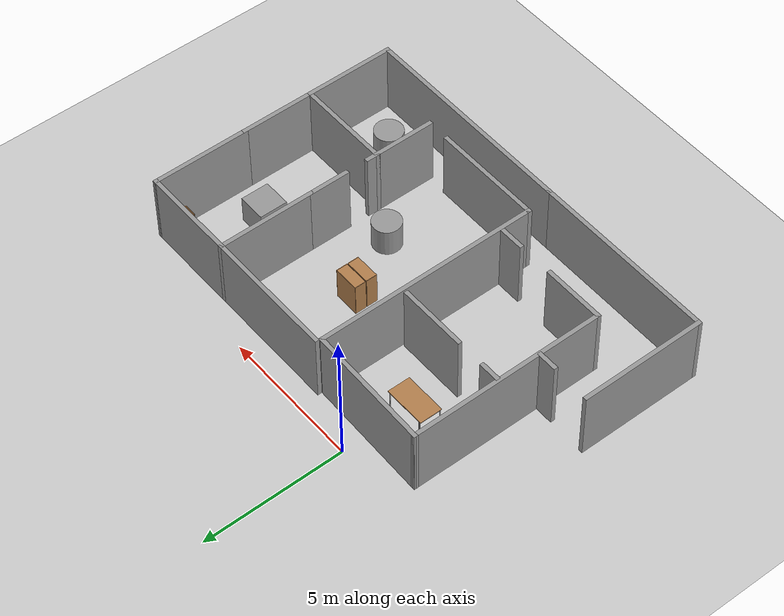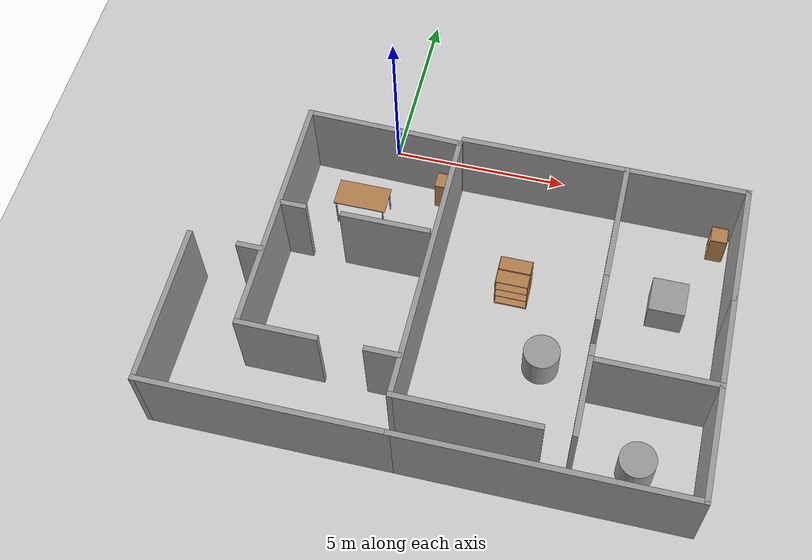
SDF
<sdf version="1.7">
 <world name="default">
  <light name="sun" type="directional">
   <pose>0 0 10 0 -0 0</pose>
   <diffuse>0.8 0.8 0.8 1</diffuse>
   <specular>0.2 0.2 0.2 1</specular>
   <attenuation>
    <range>1000</range>
    <constant>0.9</constant>
    <linear>0.01</linear>
    <quadratic>0.001</quadratic>
   </attenuation>
   <direction>-0.5 0.1 -0.9</direction>
   <spot><inner_angle>0</inner_angle><outer_angle>0</outer_angle><falloff>0</falloff></spot>
  </light>
  <model name="ground_plane">
   <static>1</static>
   <link name="link">
    <collision name="collision">
     <geometry><plane><normal>0 0 1</normal><size>100 100</size></plane></geometry>
     <surface>
      <contact><collide_bitmask>65535</collide_bitmask></contact>
      <friction><ode><mu>100</mu><mu2>50</mu2></ode></friction>
     </surface>
    </collision>
    <visual name="visual">
     <cast_shadows>0</cast_shadows>
     <geometry><plane><normal>0 0 1</normal><size>100 100</size></plane></geometry>
     <material>
      <script><uri>file://media/materials/scripts/gazebo.material</uri><name>Gazebo/Grey</name></script>
     </material>
    </visual>
   </link>
  </model>
  <gravity>0 0 -9.8</gravity>
  <magnetic_field>6e-06 2.3e-05 -4.2e-05</magnetic_field>
  <atmosphere type="adiabatic"/>
  <physics type="ode">
   <max_step_size>0.001</max_step_size>
   <real_time_factor>1</real_time_factor>
   <real_time_update_rate>1000</real_time_update_rate>
  </physics>
  <scene><ambient>0.4 0.4 0.4 1</ambient><background>0.7 0.7 0.7 1</background><shadows>1</shadows></scene>
  <spherical_coordinates>
   <surface_model>EARTH_WGS84</surface_model>
   <latitude_deg>0</latitude_deg>
   <longitude_deg>0</longitude_deg>
   <elevation>0</elevation>
   <heading_deg>0</heading_deg>
  </spherical_coordinates>
  <model name="smart_lab">
   <pose>2.895 -4.9325 0 0 -0 0</pose>
   <link name="Wall_10">
    <collision name="Wall_10_Collision">
     <geometry><box><size>3.5 0.15 2.5</size></box></geometry>
     <pose>0 0 1.25 0 -0 0</pose>
    </collision>
    <visual name="Wall_10_Visual">
     <pose>0 0 1.25 0 -0 0</pose>
     <geometry><box><size>3.5 0.15 2.5</size></box></geometry>
     <material>
      <script><uri>file://media/materials/scripts/gazebo.material</uri><name>Gazebo/Grey</name></script>
      <ambient>1 1 1 1</ambient>
     </material>
     <meta><layer>0</layer></meta>
    </visual>
    <pose>5.55 -1.7575 0 0 -0 3.14159</pose>
   </link>
   <link name="Wall_11">
    <collision name="Wall_11_Collision">
     <geometry><box><size>2.25 0.15 2.5</size></box></geometry>
     <pose>0 0 1.25 0 -0 0</pose>
    </collision>
    <visual name="Wall_11_Visual">
     <pose>0 0 1.25 0 -0 0</pose>
     <geometry><box><size>2.25 0.15 2.5</size></box></geometry>
     <material>
      <script><uri>file://media/materials/scripts/gazebo.material</uri><name>Gazebo/Grey</name></script>
      <ambient>1 1 1 1</ambient>
     </material>
     <meta><layer>0</layer></meta>
    </visual>
    <pose>3.875 -2.8075 0 0 -0 -1.5708</pose>
   </link>
   <link name="Wall_13">
    <collision name="Wall_13_Collision">
     <geometry><box><size>8 0.15 2.5</size></box></geometry>
     <pose>0 0 1.25 0 -0 0</pose>
    </collision>
    <visual name="Wall_13_Visual">
     <pose>0 0 1.25 0 -0 0</pose>
     <geometry><box><size>8 0.15 2.5</size></box></geometry>
     <material>
      <script><uri>file://media/materials/scripts/gazebo.material</uri><name>Gazebo/Grey</name></script>
      <ambient>1 1 1 1</ambient>
     </material>
     <meta><layer>0</layer></meta>
    </visual>
    <pose>3.3 -4.8575 0 0 -0 3.14159</pose>
   </link>
   <link name="Wall_21">
    <collision name="Wall_21_Collision">
     <geometry><box><size>0.5 0.15 2.5</size></box></geometry>
     <pose>0 0 1.25 0 -0 0</pose>
    </collision>
    <visual name="Wall_21_Visual">
     <pose>0 0 1.25 0 -0 0</pose>
     <geometry><box><size>0.5 0.15 2.5</size></box></geometry>
     <material>
      <script><uri>file://media/materials/scripts/gazebo.material</uri><name>Gazebo/Grey</name></script>
      <ambient>1 1 1 1</ambient>
     </material>
     <meta><layer>0</layer></meta>
    </visual>
    <pose>3.875 -1.5825 0 0 -0 1.5708</pose>
   </link>
   <link name="Wall_23">
    <collision name="Wall_23_Collision">
     <geometry><box><size>1.5 0.15 2.5</size></box></geometry>
     <pose>0 0 1.25 0 -0 0</pose>
    </collision>
    <visual name="Wall_23_Visual">
     <pose>0 0 1.25 0 -0 0</pose>
     <geometry><box><size>1.5 0.15 2.5</size></box></geometry>
     <material>
      <script><uri>file://media/materials/scripts/gazebo.material</uri><name>Gazebo/Grey</name></script>
      <ambient>1 1 1 1</ambient>
     </material>
     <meta><layer>0</layer></meta>
    </visual>
    <pose>3.875 0.1175 0 0 -0 1.5708</pose>
   </link>
   <link name="Wall_39">
    <collision name="Wall_39_Collision">
     <geometry><box><size>2.7 0.15 2.5</size></box></geometry>
     <pose>0 0 1.25 0 -0 0</pose>
    </collision>
    <visual name="Wall_39_Visual">
     <pose>0 0 1.25 0 -0 0</pose>
     <geometry><box><size>2.7 0.15 2.5</size></box></geometry>
     <material>
      <script><uri>file://media/materials/scripts/gazebo.material</uri><name>Gazebo/Grey</name></script>
      <ambient>1 1 1 1</ambient>
     </material>
     <meta><layer>0</layer></meta>
    </visual>
    <pose>7.225 -0.4825 0 0 -0 -1.5708</pose>
   </link>
   <link name="Wall_47">
    <collision name="Wall_47_Collision">
     <geometry><box><size>4 0.15 2.5</size></box></geometry>
     <pose>0 0 1.25 0 -0 0</pose>
    </collision>
    <visual name="Wall_47_Visual">
     <pose>0 0 1.25 0 -0 0</pose>
     <geometry><box><size>4 0.15 2.5</size></box></geometry>
     <material>
      <script><uri>file://media/materials/scripts/gazebo.material</uri><name>Gazebo/Grey</name></script>
      <ambient>1 1 1 1</ambient>
     </material>
     <meta><layer>0</layer></meta>
    </visual>
    <pose>1.1 -3.8575 0 0 -0 3.14159</pose>
   </link>
   <link name="Wall_49">
    <collision name="Wall_49_Collision">
     <geometry><box><size>8 0.15 2.5</size></box></geometry>
     <pose>0 0 1.25 0 -0 0</pose>
    </collision>
    <visual name="Wall_49_Visual">
     <pose>0 0 1.25 0 -0 0</pose>
     <geometry><box><size>8 0.15 2.5</size></box></geometry>
     <material>
      <script><uri>file://media/materials/scripts/gazebo.material</uri><name>Gazebo/Grey</name></script>
      <ambient>1 1 1 1</ambient>
     </material>
     <meta><layer>0</layer></meta>
    </visual>
    <pose>-0.825 0.0675 0 0 -0 1.5708</pose>
   </link>
   <link name="Wall_53">
    <collision name="Wall_53_Collision">
     <geometry><box><size>3.5 0.15 2.5</size></box></geometry>
     <pose>0 0 1.25 0 -0 0</pose>
    </collision>
    <visual name="Wall_53_Visual">
     <pose>0 0 1.25 0 -0 0</pose>
     <geometry><box><size>3.5 0.15 2.5</size></box></geometry>
     <material>
      <script><uri>file://media/materials/scripts/gazebo.material</uri><name>Gazebo/Grey</name></script>
      <ambient>1 1 1 1</ambient>
     </material>
     <meta><layer>0</layer></meta>
    </visual>
    <pose>3.875 2.4675 0 0 -0 1.5708</pose>
   </link>
   <link name="Wall_54">
    <collision name="Wall_54_Collision">
     <geometry><box><size>4.75 0.15 2.5</size></box></geometry>
     <pose>0 0 1.25 0 -0 0</pose>
    </collision>
    <visual name="Wall_54_Visual">
     <pose>0 0 1.25 0 -0 0</pose>
     <geometry><box><size>4.75 0.15 2.5</size></box></geometry>
     <material>
      <script><uri>file://media/materials/scripts/gazebo.material</uri><name>Gazebo/Grey</name></script>
      <ambient>1 1 1 1</ambient>
     </material>
     <meta><layer>0</layer></meta>
    </visual>
    <pose>1.575 4.1425 0 0 -0 3.14159</pose>
   </link>
   <link name="Wall_56">
    <collision name="Wall_56_Collision">
     <geometry><box><size>3.5 0.15 2.5</size></box></geometry>
     <pose>0 0 1.25 0 -0 0</pose>
    </collision>
    <visual name="Wall_56_Visual">
     <pose>0 0 1.25 0 -0 0</pose>
     <geometry><box><size>3.5 0.15 2.5</size></box></geometry>
     <material>
      <script><uri>file://media/materials/scripts/gazebo.material</uri><name>Gazebo/Grey</name></script>
      <ambient>1 1 1 1</ambient>
     </material>
     <meta><layer>0</layer></meta>
    </visual>
    <pose>5.55 4.1425 0 0 -0 0</pose>
   </link>
   <link name="Wall_57">
    <collision name="Wall_57_Collision">
     <geometry><box><size>3.5 0.15 2.5</size></box></geometry>
     <pose>0 0 1.25 0 -0 0</pose>
    </collision>
    <visual name="Wall_57_Visual">
     <pose>0 0 1.25 0 -0 0</pose>
     <geometry><box><size>3.5 0.15 2.5</size></box></geometry>
     <material>
      <script><uri>file://media/materials/scripts/gazebo.material</uri><name>Gazebo/Grey</name></script>
      <ambient>1 1 1 1</ambient>
     </material>
     <meta><layer>0</layer></meta>
    </visual>
    <pose>7.225 2.4675 0 0 -0 -1.5708</pose>
   </link>
   <link name="Wall_59">
    <collision name="Wall_59_Collision">
     <geometry><box><size>1 0.15 2.5</size></box></geometry>
     <pose>0 0 1.25 0 -0 0</pose>
    </collision>
    <visual name="Wall_59_Visual">
     <pose>0 0 1.25 0 -0 0</pose>
     <geometry><box><size>1 0.15 2.5</size></box></geometry>
     <material>
      <script><uri>file://media/materials/scripts/gazebo.material</uri><name>Gazebo/Grey</name></script>
      <ambient>1 1 1 1</ambient>
     </material>
     <meta><layer>0</layer></meta>
    </visual>
    <pose>-1.30123 -2.76256 0 0 -0 3.14159</pose>
   </link>
   <link name="Wall_61">
    <collision name="Wall_61_Collision">
     <geometry><box><size>2.25 0.15 2.5</size></box></geometry>
     <pose>0 0 1.25 0 -0 0</pose>
    </collision>
    <visual name="Wall_61_Visual">
     <pose>0 0 1.25 0 -0 0</pose>
     <geometry><box><size>2.25 0.15 2.5</size></box></geometry>
     <material>
      <script><uri>file://media/materials/scripts/gazebo.material</uri><name>Gazebo/Grey</name></script>
      <ambient>1 1 1 1</ambient>
     </material>
     <meta><layer>0</layer></meta>
    </visual>
    <pose>-4.12623 -2.76256 0 0 -0 3.14159</pose>
   </link>
   <link name="Wall_66">
    <collision name="Wall_66_Collision">
     <geometry><box><size>7 0.15 2.5</size></box></geometry>
     <pose>0 0 1.25 0 -0 0</pose>
    </collision>
    <visual name="Wall_66_Visual">
     <pose>0 0 1.25 0 -0 0</pose>
     <geometry><box><size>7 0.15 2.5</size></box></geometry>
     <material>
      <script><uri>file://media/materials/scripts/gazebo.material</uri><name>Gazebo/Grey</name></script>
      <ambient>1 1 1 1</ambient>
     </material>
     <meta><layer>0</layer></meta>
    </visual>
    <pose>-5.17623 0.662444 0 0 -0 1.5708</pose>
   </link>
   <link name="Wall_67">
    <collision name="Wall_67_Collision">
     <geometry><box><size>4.50227 0.15 2.5</size></box></geometry>
     <pose>0 0 1.25 0 -0 0</pose>
    </collision>
    <visual name="Wall_67_Visual">
     <pose>0 0 1.25 0 -0 0</pose>
     <geometry><box><size>4.50227 0.15 2.5</size></box></geometry>
     <material>
      <script><uri>file://media/materials/scripts/gazebo.material</uri><name>Gazebo/Grey</name></script>
      <ambient>1 1 1 1</ambient>
     </material>
     <meta><layer>0</layer></meta>
    </visual>
    <pose>-3.00062 4.03997 0 0 -0 -0.021817</pose>
   </link>
   <link name="Wall_69">
    <collision name="Wall_69_Collision">
     <geometry><box><size>0.75 0.15 2.5</size></box></geometry>
     <pose>0 0 1.25 0 -0 0</pose>
    </collision>
    <visual name="Wall_69_Visual">
     <pose>0 0 1.25 0 -0 0</pose>
     <geometry><box><size>0.75 0.15 2.5</size></box></geometry>
     <material>
      <script><uri>file://media/materials/scripts/gazebo.material</uri><name>Gazebo/Grey</name></script>
      <ambient>1 1 1 1</ambient>
     </material>
     <meta><layer>0</layer></meta>
    </visual>
    <pose>-4.77997 0.998682 0 0 -0 0</pose>
   </link>
   <link name="Wall_71">
    <collision name="Wall_71_Collision">
     <geometry><box><size>2.5 0.15 2.5</size></box></geometry>
     <pose>0 0 1.25 0 -0 0</pose>
    </collision>
    <visual name="Wall_71_Visual">
     <pose>0 0 1.25 0 -0 0</pose>
     <geometry><box><size>2.5 0.15 2.5</size></box></geometry>
     <material>
      <script><uri>file://media/materials/scripts/gazebo.material</uri><name>Gazebo/Grey</name></script>
      <ambient>1 1 1 1</ambient>
     </material>
     <meta><layer>0</layer></meta>
    </visual>
    <pose>-2.20497 0.998682 0 0 -0 0</pose>
   </link>
   <link name="Wall_73">
    <collision name="Wall_73_Collision">
     <geometry><box><size>6.75 0.15 2.5</size></box></geometry>
     <pose>0 0 1.25 0 -0 0</pose>
    </collision>
    <visual name="Wall_73_Visual">
     <pose>0 0 1.25 0 -0 0</pose>
     <geometry><box><size>6.75 0.15 2.5</size></box></geometry>
     <material>
      <script><uri>file://media/materials/scripts/gazebo.material</uri><name>Gazebo/Grey</name></script>
      <ambient>1 1 1 1</ambient>
     </material>
     <meta><layer>0</layer></meta>
    </visual>
    <pose>-3.925 -4.8575 0 0 -0 3.14159</pose>
   </link>
   <link name="Wall_74">
    <collision name="Wall_74_Collision">
     <geometry><box><size>4.5 0.15 2.5</size></box></geometry>
     <pose>0 0 1.25 0 -0 0</pose>
    </collision>
    <visual name="Wall_74_Visual">
     <pose>0 0 1.25 0 -0 0</pose>
     <geometry><box><size>4.5 0.15 2.5</size></box></geometry>
     <material>
      <script><uri>file://media/materials/scripts/gazebo.material</uri><name>Gazebo/Grey</name></script>
      <ambient>1 1 1 1</ambient>
     </material>
     <meta><layer>0</layer></meta>
    </visual>
    <pose>-7.225 -2.6825 0 0 -0 1.5708</pose>
   </link>
   <link name="Wall_76">
    <collision name="Wall_76_Collision">
     <geometry><box><size>0.75 0.15 2.5</size></box></geometry>
     <pose>0 0 1.25 0 -0 0</pose>
    </collision>
    <visual name="Wall_76_Visual">
     <pose>0 0 1.25 0 -0 0</pose>
     <geometry><box><size>0.75 0.15 2.5</size></box></geometry>
     <material>
      <script><uri>file://media/materials/scripts/gazebo.material</uri><name>Gazebo/Grey</name></script>
      <ambient>1 1 1 1</ambient>
     </material>
     <meta><layer>0</layer></meta>
    </visual>
    <pose>-5.52076 -0.52995 0 0 -0 3.14159</pose>
   </link>
   <link name="Wall_8">
    <collision name="Wall_8_Collision">
     <geometry><box><size>3.25 0.15 2.5</size></box></geometry>
     <pose>0 0 1.25 0 -0 0</pose>
    </collision>
    <visual name="Wall_8_Visual">
     <pose>0 0 1.25 0 -0 0</pose>
     <geometry><box><size>3.25 0.15 2.5</size></box></geometry>
     <material>
      <script><uri>file://media/materials/scripts/gazebo.material</uri><name>Gazebo/Grey</name></script>
      <ambient>1 1 1 1</ambient>
     </material>
     <meta><layer>0</layer></meta>
    </visual>
    <pose>7.225 -3.3075 0 0 -0 1.5708</pose>
   </link>
   <static>1</static>
  </model>
  <model name="bookshelf">
   <static>1</static>
   <link name="link">
    <inertial><mass>1</mass></inertial>
    <collision name="back">
     <pose>0 0.005 0.6 0 -0 0</pose>
     <geometry><box><size>0.9 0.01 1.2</size></box></geometry>
    </collision>
    <visual name="visual1">
     <pose>0 0.005 0.6 0 -0 0</pose>
     <geometry><box><size>0.9 0.01 1.2</size></box></geometry>
     <material>
      <script><uri>file://media/materials/scripts/gazebo.material</uri><name>Gazebo/Wood</name></script>
     </material>
    </visual>
    <collision name="left_side">
     <pose>0.45 -0.195 0.6 0 -0 0</pose>
     <geometry><box><size>0.02 0.4 1.2</size></box></geometry>
    </collision>
    <visual name="visual2">
     <pose>0.45 -0.195 0.6 0 -0 0</pose>
     <geometry><box><size>0.02 0.4 1.2</size></box></geometry>
     <material>
      <script><uri>file://media/materials/scripts/gazebo.material</uri><name>Gazebo/Wood</name></script>
     </material>
    </visual>
    <collision name="right_side">
     <pose>-0.45 -0.195 0.6 0 -0 0</pose>
     <geometry><box><size>0.02 0.4 1.2</size></box></geometry>
    </collision>
    <visual name="visual3">
     <pose>-0.45 -0.195 0.6 0 -0 0</pose>
     <geometry><box><size>0.02 0.4 1.2</size></box></geometry>
     <material>
      <script><uri>file://media/materials/scripts/gazebo.material</uri><name>Gazebo/Wood</name></script>
     </material>
    </visual>
    <collision name="bottom">
     <pose>0 -0.195 0.03 0 -0 0</pose>
     <geometry><box><size>0.88 0.4 0.06</size></box></geometry>
    </collision>
    <visual name="visual4">
     <pose>0 -0.195 0.03 0 -0 0</pose>
     <geometry><box><size>0.88 0.4 0.06</size></box></geometry>
     <material>
      <script><uri>file://media/materials/scripts/gazebo.material</uri><name>Gazebo/Wood</name></script>
     </material>
    </visual>
    <collision name="top">
     <pose>0 -0.195 1.19 0 -0 0</pose>
     <geometry><box><size>0.88 0.4 0.02</size></box></geometry>
    </collision>
    <visual name="visual5">
     <pose>0 -0.195 1.19 0 -0 0</pose>
     <geometry><box><size>0.88 0.4 0.02</size></box></geometry>
     <material>
      <script><uri>file://media/materials/scripts/gazebo.material</uri><name>Gazebo/Wood</name></script>
     </material>
    </visual>
    <collision name="low_shelf">
     <pose>0 -0.195 0.43 0 -0 0</pose>
     <geometry><box><size>0.88 0.4 0.02</size></box></geometry>
    </collision>
    <visual name="visual6">
     <pose>0 -0.195 0.43 0 -0 0</pose>
     <geometry><box><size>0.88 0.4 0.02</size></box></geometry>
     <material>
      <script><uri>file://media/materials/scripts/gazebo.material</uri><name>Gazebo/Wood</name></script>
     </material>
    </visual>
    <collision name="high_shelf">
     <pose>0 -0.195 0.8 0 -0 0</pose>
     <geometry><box><size>0.88 0.4 0.02</size></box></geometry>
    </collision>
    <visual name="visual7">
     <pose>0 -0.195 0.8 0 -0 0</pose>
     <geometry><box><size>0.88 0.4 0.02</size></box></geometry>
     <material>
      <script><uri>file://media/materials/scripts/gazebo.material</uri><name>Gazebo/Wood</name></script>
     </material>
    </visual>
   </link>
   <pose>4.29323 -3.94866 0 0 -0 0</pose>
  </model>
  <model name="bookshelf_0">
   <static>1</static>
   <link name="link">
    <inertial><mass>1</mass></inertial>
    <collision name="back">
     <pose>0 0.005 0.6 0 -0 0</pose>
     <geometry><box><size>0.9 0.01 1.2</size></box></geometry>
    </collision>
    <visual name="visual1">
     <pose>0 0.005 0.6 0 -0 0</pose>
     <geometry><box><size>0.9 0.01 1.2</size></box></geometry>
     <material>
      <script><uri>file://media/materials/scripts/gazebo.material</uri><name>Gazebo/Wood</name></script>
     </material>
    </visual>
    <collision name="left_side">
     <pose>0.45 -0.195 0.6 0 -0 0</pose>
     <geometry><box><size>0.02 0.4 1.2</size></box></geometry>
    </collision>
    <visual name="visual2">
     <pose>0.45 -0.195 0.6 0 -0 0</pose>
     <geometry><box><size>0.02 0.4 1.2</size></box></geometry>
     <material>
      <script><uri>file://media/materials/scripts/gazebo.material</uri><name>Gazebo/Wood</name></script>
     </material>
    </visual>
    <collision name="right_side">
     <pose>-0.45 -0.195 0.6 0 -0 0</pose>
     <geometry><box><size>0.02 0.4 1.2</size></box></geometry>
    </collision>
    <visual name="visual3">
     <pose>-0.45 -0.195 0.6 0 -0 0</pose>
     <geometry><box><size>0.02 0.4 1.2</size></box></geometry>
     <material>
      <script><uri>file://media/materials/scripts/gazebo.material</uri><name>Gazebo/Wood</name></script>
     </material>
    </visual>
    <collision name="bottom">
     <pose>0 -0.195 0.03 0 -0 0</pose>
     <geometry><box><size>0.88 0.4 0.06</size></box></geometry>
    </collision>
    <visual name="visual4">
     <pose>0 -0.195 0.03 0 -0 0</pose>
     <geometry><box><size>0.88 0.4 0.06</size></box></geometry>
     <material>
      <script><uri>file://media/materials/scripts/gazebo.material</uri><name>Gazebo/Wood</name></script>
     </material>
    </visual>
    <collision name="top">
     <pose>0 -0.195 1.19 0 -0 0</pose>
     <geometry><box><size>0.88 0.4 0.02</size></box></geometry>
    </collision>
    <visual name="visual5">
     <pose>0 -0.195 1.19 0 -0 0</pose>
     <geometry><box><size>0.88 0.4 0.02</size></box></geometry>
     <material>
      <script><uri>file://media/materials/scripts/gazebo.material</uri><name>Gazebo/Wood</name></script>
     </material>
    </visual>
    <collision name="low_shelf">
     <pose>0 -0.195 0.43 0 -0 0</pose>
     <geometry><box><size>0.88 0.4 0.02</size></box></geometry>
    </collision>
    <visual name="visual6">
     <pose>0 -0.195 0.43 0 -0 0</pose>
     <geometry><box><size>0.88 0.4 0.02</size></box></geometry>
     <material>
      <script><uri>file://media/materials/scripts/gazebo.material</uri><name>Gazebo/Wood</name></script>
     </material>
    </visual>
    <collision name="high_shelf">
     <pose>0 -0.195 0.8 0 -0 0</pose>
     <geometry><box><size>0.88 0.4 0.02</size></box></geometry>
    </collision>
    <visual name="visual7">
     <pose>0 -0.195 0.8 0 -0 0</pose>
     <geometry><box><size>0.88 0.4 0.02</size></box></geometry>
     <material>
      <script><uri>file://media/materials/scripts/gazebo.material</uri><name>Gazebo/Wood</name></script>
     </material>
    </visual>
   </link>
   <pose>4.29115 -3.51757 0 0 -0 0</pose>
  </model>
  <model name="cabinet">
   <static>1</static>
   <link name="cabinet_bottom_plate">
    <inertial>
     <pose>0 0 -1 0 -0 0</pose>
     <inertia><ixx>2.05</ixx><ixy>0</ixy><ixz>0</ixz><iyy>2.05</iyy><iyz>0</iyz><izz>2.05</izz></inertia>
     <mass>25</mass>
    </inertial>
    <collision name="cabinet_bottom_plate_geom">
     <pose>0 0 0.01 0 -0 0</pose>
     <geometry><box><size>0.45 0.45 0.02</size></box></geometry>
    </collision>
    <visual name="cabinet_bottom_plate_geom_visual">
     <pose>0 0 0.01 0 -0 0</pose>
     <geometry><box><size>0.45 0.45 0.02</size></box></geometry>
     <material>
      <script><uri>file://media/materials/scripts/gazebo.material</uri><name>Gazebo/Wood</name></script>
     </material>
    </visual>
    <collision name="cabinet_bottom_plate_geom_cabinet_back_plate">
     <pose>0.235 0 0.51 0 -0 0</pose>
     <geometry><box><size>0.02 0.45 1.02</size></box></geometry>
    </collision>
    <visual name="cabinet_bottom_plate_geom_cabinet_back_plate_visual">
     <pose>0.235 0 0.51 0 -0 0</pose>
     <geometry><box><size>0.02 0.45 1.02</size></box></geometry>
     <material>
      <script><uri>file://media/materials/scripts/gazebo.material</uri><name>Gazebo/Wood</name></script>
     </material>
    </visual>
    <collision name="cabinet_bottom_plate_geom_cabinet_left_plate">
     <pose>0 0.235 0.51 0 -0 0</pose>
     <geometry><box><size>0.45 0.02 1.02</size></box></geometry>
    </collision>
    <visual name="cabinet_bottom_plate_geom_cabinet_left_plate_visual">
     <pose>0 0.235 0.51 0 -0 0</pose>
     <geometry><box><size>0.45 0.02 1.02</size></box></geometry>
     <material>
      <script><uri>file://media/materials/scripts/gazebo.material</uri><name>Gazebo/Wood</name></script>
     </material>
    </visual>
    <collision name="cabinet_bottom_plate_geom_cabinet_middle_plate">
     <pose>0 0 0.51 0 -0 0</pose>
     <geometry><box><size>0.45 0.45 0.02</size></box></geometry>
    </collision>
    <visual name="cabinet_bottom_plate_geom_cabinet_middle_plate_visual">
     <pose>0 0 0.51 0 -0 0</pose>
     <geometry><box><size>0.45 0.45 0.02</size></box></geometry>
     <material>
      <script><uri>file://media/materials/scripts/gazebo.material</uri><name>Gazebo/Wood</name></script>
     </material>
    </visual>
    <collision name="cabinet_bottom_plate_geom_cabinet_right_plate">
     <pose>0 -0.235 0.51 0 -0 0</pose>
     <geometry><box><size>0.45 0.02 1.02</size></box></geometry>
    </collision>
    <visual name="cabinet_bottom_plate_geom_cabinet_right_plate_visual">
     <pose>0 -0.235 0.51 0 -0 0</pose>
     <geometry><box><size>0.45 0.02 1.02</size></box></geometry>
     <material>
      <script><uri>file://media/materials/scripts/gazebo.material</uri><name>Gazebo/Wood</name></script>
     </material>
    </visual>
    <collision name="cabinet_bottom_plate_geom_cabinet_top_plate">
     <pose>0 0 1.01 0 -0 0</pose>
     <geometry><box><size>0.45 0.45 0.02</size></box></geometry>
    </collision>
    <visual name="cabinet_bottom_plate_geom_cabinet_top_plate_visual">
     <pose>0 0 1.01 0 -0 0</pose>
     <geometry><box><size>0.45 0.45 0.02</size></box></geometry>
     <material>
      <script><uri>file://media/materials/scripts/gazebo.material</uri><name>Gazebo/Wood</name></script>
     </material>
    </visual>
   </link>
   <pose>1.70166 -1.31022 0 0 -0 0</pose>
  </model>
  <model name="cabinet_0">
   <static>1</static>
   <link name="cabinet_bottom_plate">
    <inertial>
     <pose>0 0 -1 0 -0 0</pose>
     <inertia><ixx>2.05</ixx><ixy>0</ixy><ixz>0</ixz><iyy>2.05</iyy><iyz>0</iyz><izz>2.05</izz></inertia>
     <mass>25</mass>
    </inertial>
    <collision name="cabinet_bottom_plate_geom">
     <pose>0 0 0.01 0 -0 0</pose>
     <geometry><box><size>0.45 0.45 0.02</size></box></geometry>
    </collision>
    <visual name="cabinet_bottom_plate_geom_visual">
     <pose>0 0 0.01 0 -0 0</pose>
     <geometry><box><size>0.45 0.45 0.02</size></box></geometry>
     <material>
      <script><uri>file://media/materials/scripts/gazebo.material</uri><name>Gazebo/Wood</name></script>
     </material>
    </visual>
    <collision name="cabinet_bottom_plate_geom_cabinet_back_plate">
     <pose>0.235 0 0.51 0 -0 0</pose>
     <geometry><box><size>0.02 0.45 1.02</size></box></geometry>
    </collision>
    <visual name="cabinet_bottom_plate_geom_cabinet_back_plate_visual">
     <pose>0.235 0 0.51 0 -0 0</pose>
     <geometry><box><size>0.02 0.45 1.02</size></box></geometry>
     <material>
      <script><uri>file://media/materials/scripts/gazebo.material</uri><name>Gazebo/Wood</name></script>
     </material>
    </visual>
    <collision name="cabinet_bottom_plate_geom_cabinet_left_plate">
     <pose>0 0.235 0.51 0 -0 0</pose>
     <geometry><box><size>0.45 0.02 1.02</size></box></geometry>
    </collision>
    <visual name="cabinet_bottom_plate_geom_cabinet_left_plate_visual">
     <pose>0 0.235 0.51 0 -0 0</pose>
     <geometry><box><size>0.45 0.02 1.02</size></box></geometry>
     <material>
      <script><uri>file://media/materials/scripts/gazebo.material</uri><name>Gazebo/Wood</name></script>
     </material>
    </visual>
    <collision name="cabinet_bottom_plate_geom_cabinet_middle_plate">
     <pose>0 0 0.51 0 -0 0</pose>
     <geometry><box><size>0.45 0.45 0.02</size></box></geometry>
    </collision>
    <visual name="cabinet_bottom_plate_geom_cabinet_middle_plate_visual">
     <pose>0 0 0.51 0 -0 0</pose>
     <geometry><box><size>0.45 0.45 0.02</size></box></geometry>
     <material>
      <script><uri>file://media/materials/scripts/gazebo.material</uri><name>Gazebo/Wood</name></script>
     </material>
    </visual>
    <collision name="cabinet_bottom_plate_geom_cabinet_right_plate">
     <pose>0 -0.235 0.51 0 -0 0</pose>
     <geometry><box><size>0.45 0.02 1.02</size></box></geometry>
    </collision>
    <visual name="cabinet_bottom_plate_geom_cabinet_right_plate_visual">
     <pose>0 -0.235 0.51 0 -0 0</pose>
     <geometry><box><size>0.45 0.02 1.02</size></box></geometry>
     <material>
      <script><uri>file://media/materials/scripts/gazebo.material</uri><name>Gazebo/Wood</name></script>
     </material>
    </visual>
    <collision name="cabinet_bottom_plate_geom_cabinet_top_plate">
     <pose>0 0 1.01 0 -0 0</pose>
     <geometry><box><size>0.45 0.45 0.02</size></box></geometry>
    </collision>
    <visual name="cabinet_bottom_plate_geom_cabinet_top_plate_visual">
     <pose>0 0 1.01 0 -0 0</pose>
     <geometry><box><size>0.45 0.45 0.02</size></box></geometry>
     <material>
      <script><uri>file://media/materials/scripts/gazebo.material</uri><name>Gazebo/Wood</name></script>
     </material>
    </visual>
   </link>
   <pose>9.64765 -1.3575 0 0 -0 0</pose>
  </model>
  <model name="unit_cylinder">
   <pose>5.47903 -6.03365 0.499993 -3e-06 -3e-06 0</pose>
   <link name="link">
    <inertial>
     <mass>1</mass>
     <inertia><ixx>0.145833</ixx><ixy>0</ixy><ixz>0</ixz><iyy>0.145833</iyy><iyz>0</iyz><izz>0.125</izz></inertia>
    </inertial>
    <collision name="collision">
     <geometry><cylinder><radius>0.5</radius><length>1</length></cylinder></geometry>
    </collision>
    <visual name="visual">
     <geometry><cylinder><radius>0.5</radius><length>1</length></cylinder></geometry>
     <material>
      <script><name>Gazebo/Grey</name><uri>file://media/materials/scripts/gazebo.material</uri></script>
     </material>
    </visual>
   </link>
  </model>
  <model name="table">
   <static>1</static>
   <link name="link">
    <collision name="surface">
     <pose>0 0 1 0 -0 0</pose>
     <geometry><box><size>1.5 0.8 0.03</size></box></geometry>
     <surface><friction><ode><mu>0.6</mu><mu2>0.6</mu2></ode></friction></surface>
    </collision>
    <visual name="visual1">
     <pose>0 0 1 0 -0 0</pose>
     <geometry><box><size>1.5 0.8 0.03</size></box></geometry>
     <material>
      <script><uri>file://media/materials/scripts/gazebo.material</uri><name>Gazebo/Wood</name></script>
     </material>
    </visual>
    <collision name="front_left_leg">
     <pose>0.68 0.38 0.5 0 -0 0</pose>
     <geometry><cylinder><radius>0.02</radius><length>1</length></cylinder></geometry>
    </collision>
    <visual name="front_left_leg">
     <pose>0.68 0.38 0.5 0 -0 0</pose>
     <geometry><cylinder><radius>0.02</radius><length>1</length></cylinder></geometry>
     <material>
      <script><uri>file://media/materials/scripts/gazebo.material</uri><name>Gazebo/Grey</name></script>
     </material>
    </visual>
    <collision name="front_right_leg">
     <pose>0.68 -0.38 0.5 0 -0 0</pose>
     <geometry><cylinder><radius>0.02</radius><length>1</length></cylinder></geometry>
    </collision>
    <visual name="front_right_leg">
     <pose>0.68 -0.38 0.5 0 -0 0</pose>
     <geometry><cylinder><radius>0.02</radius><length>1</length></cylinder></geometry>
     <material>
      <script><uri>file://media/materials/scripts/gazebo.material</uri><name>Gazebo/Grey</name></script>
     </material>
    </visual>
    <collision name="back_right_leg">
     <pose>-0.68 -0.38 0.5 0 -0 0</pose>
     <geometry><cylinder><radius>0.02</radius><length>1</length></cylinder></geometry>
    </collision>
    <visual name="back_right_leg">
     <pose>-0.68 -0.38 0.5 0 -0 0</pose>
     <geometry><cylinder><radius>0.02</radius><length>1</length></cylinder></geometry>
     <material>
      <script><uri>file://media/materials/scripts/gazebo.material</uri><name>Gazebo/Grey</name></script>
     </material>
    </visual>
    <collision name="back_left_leg">
     <pose>-0.68 0.38 0.5 0 -0 0</pose>
     <geometry><cylinder><radius>0.02</radius><length>1</length></cylinder></geometry>
    </collision>
    <visual name="back_left_leg">
     <pose>-0.68 0.38 0.5 0 -0 0</pose>
     <geometry><cylinder><radius>0.02</radius><length>1</length></cylinder></geometry>
     <material>
      <script><uri>file://media/materials/scripts/gazebo.material</uri><name>Gazebo/Grey</name></script>
     </material>
    </visual>
   </link>
   <pose>-0.454473 -2.33569 0 0 -0 0</pose>
  </model>
  <model name="unit_cylinder_0">
   <pose>8.44448 -8.48539 0.499993 -3e-06 -4e-06 -0</pose>
   <link name="link">
    <inertial>
     <mass>1</mass>
     <inertia><ixx>0.145833</ixx><ixy>0</ixy><ixz>0</ixz><iyy>0.145833</iyy><iyz>0</iyz><izz>0.125</izz></inertia>
    </inertial>
    <collision name="collision">
     <geometry><cylinder><radius>0.5</radius><length>1</length></cylinder></geometry>
    </collision>
    <visual name="visual">
     <geometry><cylinder><radius>0.5</radius><length>1</length></cylinder></geometry>
     <material>
      <script><name>Gazebo/Grey</name><uri>file://media/materials/scripts/gazebo.material</uri></script>
     </material>
    </visual>
   </link>
  </model>
  <model name="unit_box">
   <pose>8.54637 -3.61584 0.5 0 -0 0</pose>
   <link name="link">
    <inertial>
     <mass>1</mass>
     <inertia>
      <ixx>0.166667</ixx>
      <ixy>0</ixy>
      <ixz>0</ixz>
      <iyy>0.166667</iyy>
      <iyz>0</iyz>
      <izz>0.166667</izz>
     </inertia>
    </inertial>
    <collision name="collision"><geometry><box><size>1 1 1</size></box></geometry></collision>
    <visual name="visual">
     <geometry><box><size>1 1 1</size></box></geometry>
     <material>
      <script><name>Gazebo/Grey</name><uri>file://media/materials/scripts/gazebo.material</uri></script>
     </material>
    </visual>
   </link>
  </model>
 </world>
</sdf>
